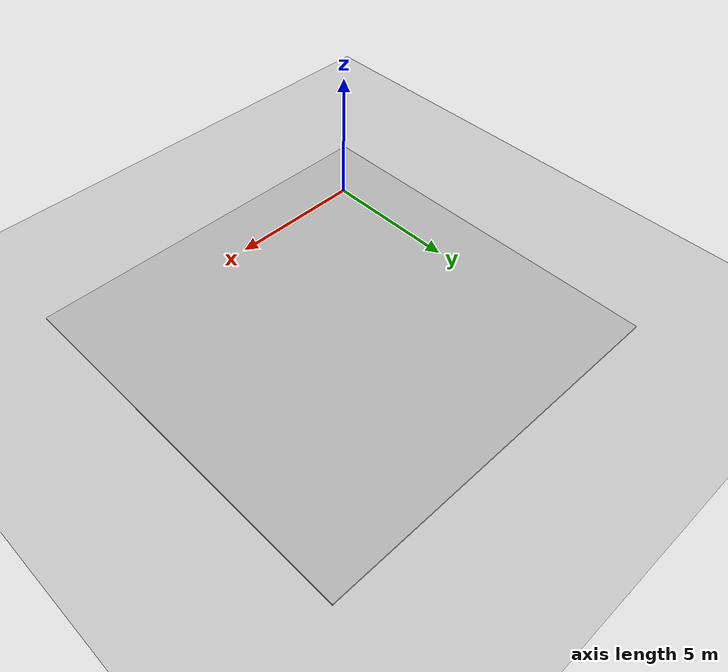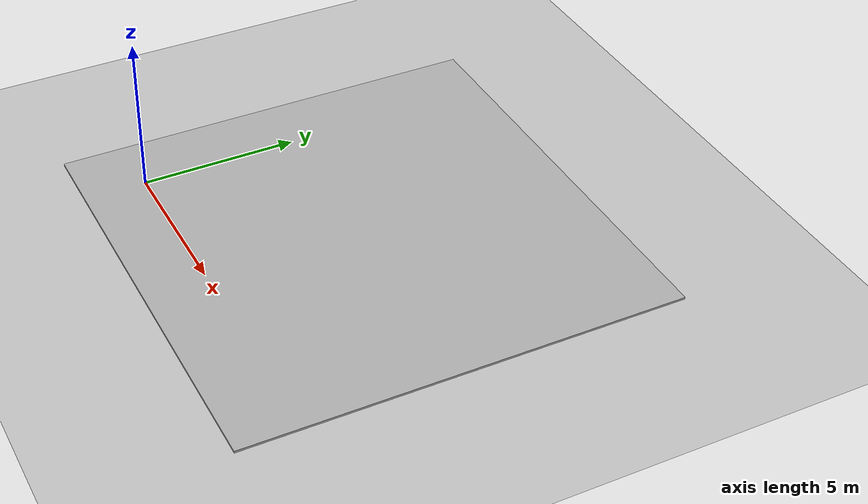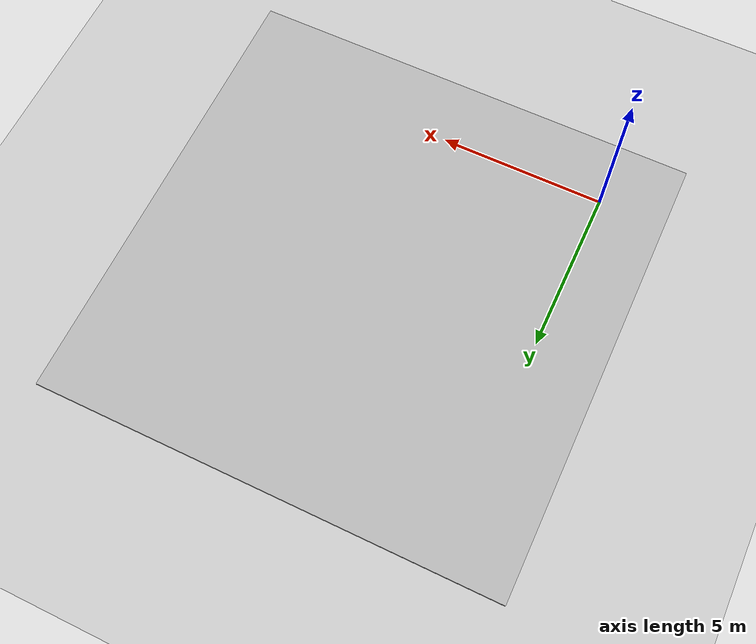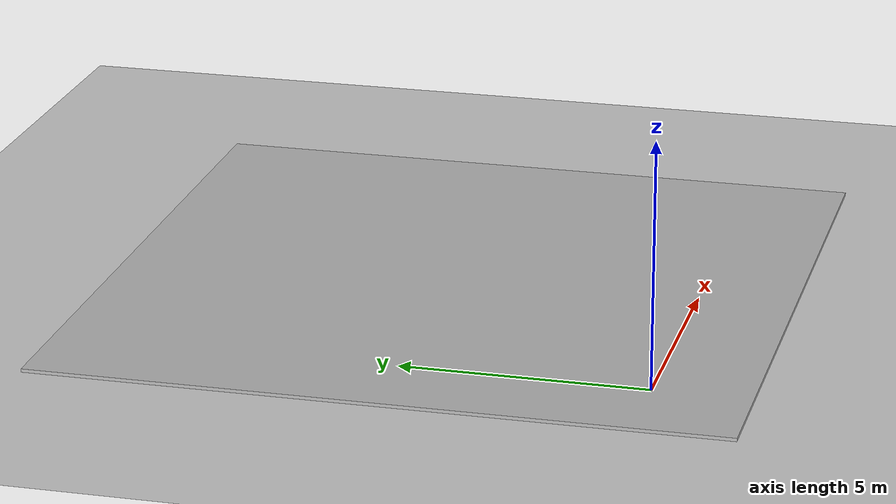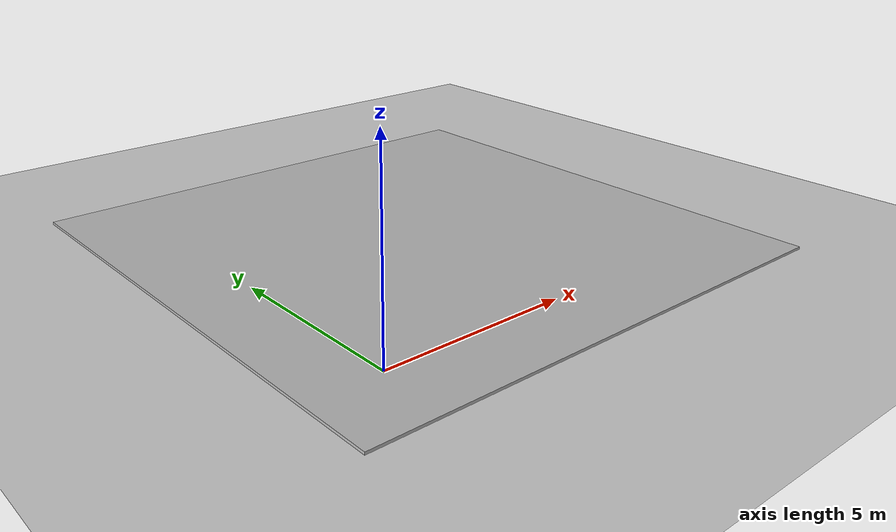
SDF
<?xml version="1.0"?>
<sdf  version="1.7">

    <world name="default">
        <scene>
            <shadows>0</shadows>
        </scene>
        <physics type="ode">
        <gravity>0 0 -9.81</gravity>
        <ode>
            <solver>
            <type>quick</type>
            <iters>20</iters>
            <sor>1.0</sor>
            </solver>
            <constraints>
            <cfm>0.0</cfm>
            <erp>0.2</erp>
            <contact_max_correcting_vel>100.0</contact_max_correcting_vel>
            <contact_surface_layer>0.0</contact_surface_layer>
            </constraints>
        </ode>
        <real_time_update_rate>1000</real_time_update_rate>
        <max_step_size>0.001</max_step_size>
        </physics>

        <!-- A global light source -->
        <include>
        <uri>model://sun</uri>
        </include>
        <!-- A ground plane -->
        <include>
        <uri>model://ground_plane</uri>
        </include>

        <!-- import ground floor model-->
        <include>
            <uri>model://floor</uri>
            <name>floor</name>
            <pose>5 5 0 0 0 0 </pose>
        </include>

    </world>
</sdf>

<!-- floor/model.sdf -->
<sdf version="1.7">
    <model name="ground_floor">
        <static>true</static>
        <link name="link">
            <collision name="collision">
                <geometry>
                    <box>
                        <size>14.0 14.0 0.1</size>
                    </box>
                </geometry>
            </collision>
            <visual name="visual">
                <cast_shadows>false</cast_shadows>
                <geometry>
                    <box>
                        <size>14.0 14.0 0.1</size>
                    </box>
                </geometry>
                <material>
                    <script>
                        <uri>model://floor/materials/scripts</uri>
                        <uri>model://floor/materials/textures</uri>
                        <name>vrc/groundfloor</name>
                    </script>
                </material>
            </visual>
        </link>
    </model>
</sdf>
